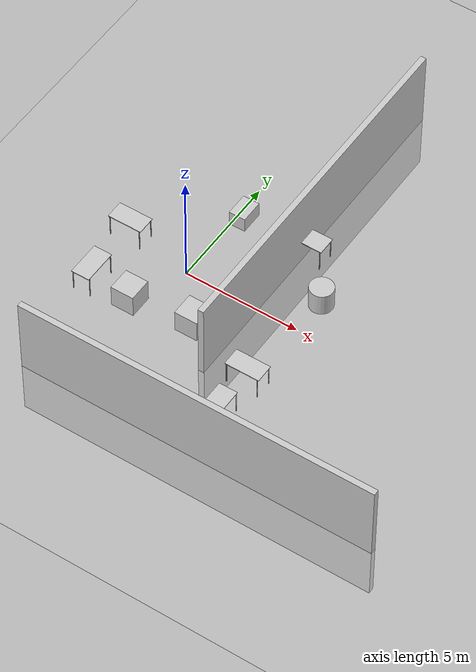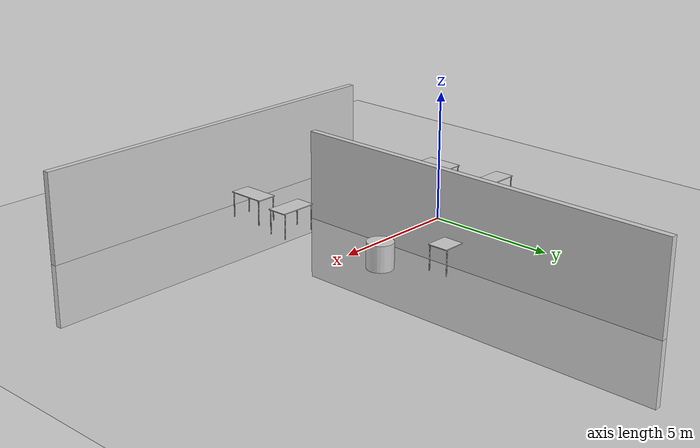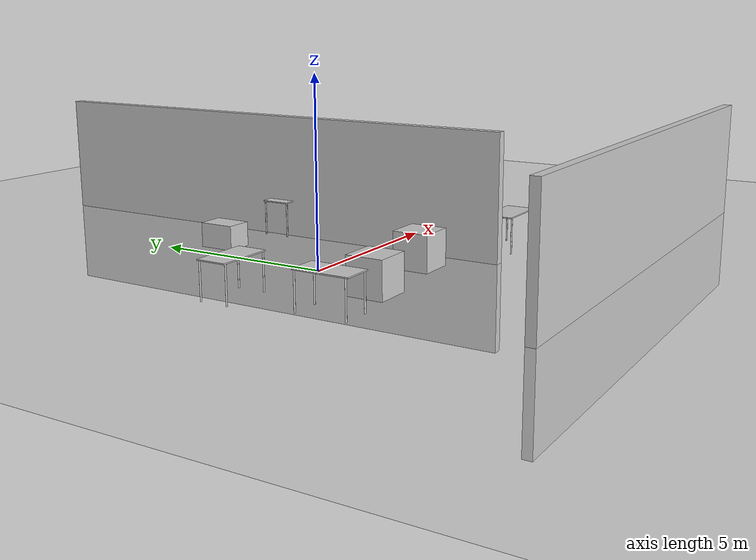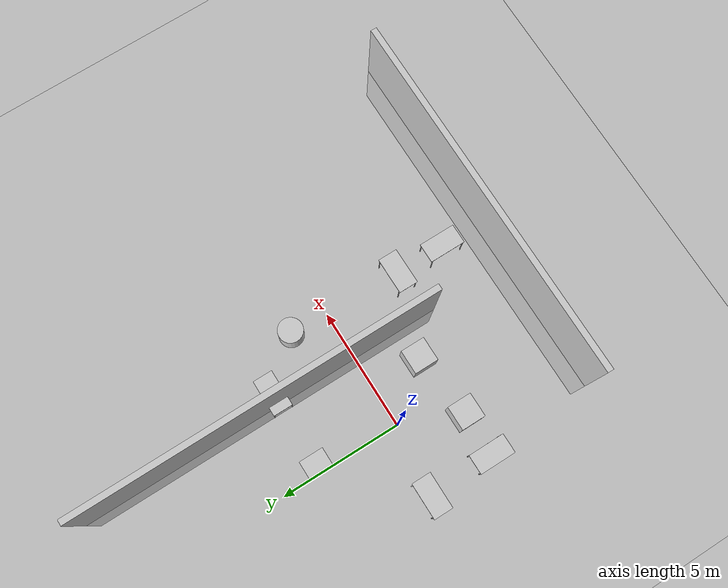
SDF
<sdf version='1.9'>
  <world name='default'>
    <light name='sun' type='directional'>
      <cast_shadows>1</cast_shadows>
      <pose>0 0 10 0 -0 0</pose>
      <diffuse>0.8 0.8 0.8 1</diffuse>
      <specular>0.2 0.2 0.2 1</specular>
      <attenuation>
        <range>1000</range>
        <constant>0.9</constant>
        <linear>0.01</linear>
        <quadratic>0.001</quadratic>
      </attenuation>
      <direction>-0.5 0.1 -0.9</direction>
      <spot>
        <inner_angle>0</inner_angle>
        <outer_angle>0</outer_angle>
        <falloff>0</falloff>
      </spot>
    </light>
    <model name='ground_plane'>
      <static>1</static>
      <link name='link'>
        <collision name='collision'>
          <geometry>
            <plane>
              <normal>0 0 1</normal>
              <size>100 100</size>
            </plane>
          </geometry>
          <surface>
            <friction>
              <ode>
                <mu>100</mu>
                <mu2>50</mu2>
              </ode>
              <torsional>
                <ode/>
              </torsional>
            </friction>
            <contact>
              <ode/>
            </contact>
            <bounce/>
          </surface>
          <max_contacts>10</max_contacts>
        </collision>
        <visual name='visual'>
          <cast_shadows>0</cast_shadows>
          <geometry>
            <plane>
              <normal>0 0 1</normal>
              <size>100 100</size>
            </plane>
          </geometry>
          <material>
            <ambient>0.8 0.8 0.8 1</ambient>
            <diffuse>0.8 0.8 0.8 1</diffuse>
            <specular>0.8 0.8 0.8 1</specular>
          </material>
        </visual>
        <self_collide>0</self_collide>
        <enable_wind>0</enable_wind>
        <kinematic>0</kinematic>
      </link>
    </model>
    <gravity>0 0 -9.8</gravity>
    <magnetic_field>6e-06 2.3e-05 -4.2e-05</magnetic_field>
    <atmosphere type='adiabatic'/>
    <physics type='ode'>
      <max_step_size>0.001</max_step_size>
      <real_time_factor>1</real_time_factor>
      <real_time_update_rate>1000</real_time_update_rate>
    </physics>
    <scene>
      <ambient>1 1 1 1</ambient>
      <background>0.8 0.8 0.8 1</background>
      <shadows>true</shadows>
    </scene>
    <model name='table'>
      <static>1</static>
      <link name='link'>
        <collision name='surface'>
          <pose>0 0 1 0 -0 0</pose>
          <geometry>
            <box>
              <size>1.5 0.8 0.03</size>
            </box>
          </geometry>
          <surface>
            <friction>
              <ode>
                <mu>0.6</mu>
                <mu2>0.6</mu2>
              </ode>
              <torsional>
                <ode/>
              </torsional>
            </friction>
            <contact>
              <ode/>
            </contact>
            <bounce/>
          </surface>
          <max_contacts>10</max_contacts>
        </collision>
        <visual name='visual1'>
          <pose>0 0 1 0 -0 0</pose>
          <geometry>
            <box>
              <size>1.5 0.8 0.03</size>
            </box>
          </geometry>
          <material>
            <ambient>0.8 0.8 0.8 1</ambient>
            <diffuse>0.8 0.8 0.8 1</diffuse>
            <specular>0.8 0.8 0.8 1</specular>
          </material>
        </visual>
        <collision name='front_left_leg'>
          <pose>0.68 0.38 0.5 0 -0 0</pose>
          <geometry>
            <cylinder>
              <radius>0.02</radius>
              <length>1</length>
            </cylinder>
          </geometry>
          <max_contacts>10</max_contacts>
          <surface>
            <contact>
              <ode/>
            </contact>
            <bounce/>
            <friction>
              <torsional>
                <ode/>
              </torsional>
              <ode/>
            </friction>
          </surface>
        </collision>
        <visual name='front_left_leg'>
          <pose>0.68 0.38 0.5 0 -0 0</pose>
          <geometry>
            <cylinder>
              <radius>0.02</radius>
              <length>1</length>
            </cylinder>
          </geometry>
          <material>
            <ambient>0.8 0.8 0.8 1</ambient>
            <diffuse>0.8 0.8 0.8 1</diffuse>
            <specular>0.8 0.8 0.8 1</specular>
          </material>
        </visual>
        <collision name='front_right_leg'>
          <pose>0.68 -0.38 0.5 0 -0 0</pose>
          <geometry>
            <cylinder>
              <radius>0.02</radius>
              <length>1</length>
            </cylinder>
          </geometry>
          <max_contacts>10</max_contacts>
          <surface>
            <contact>
              <ode/>
            </contact>
            <bounce/>
            <friction>
              <torsional>
                <ode/>
              </torsional>
              <ode/>
            </friction>
          </surface>
        </collision>
        <visual name='front_right_leg'>
          <pose>0.68 -0.38 0.5 0 -0 0</pose>
          <geometry>
            <cylinder>
              <radius>0.02</radius>
              <length>1</length>
            </cylinder>
          </geometry>
          <material>
            <ambient>0.8 0.8 0.8 1</ambient>
            <diffuse>0.8 0.8 0.8 1</diffuse>
            <specular>0.8 0.8 0.8 1</specular>
          </material>
        </visual>
        <collision name='back_right_leg'>
          <pose>-0.68 -0.38 0.5 0 -0 0</pose>
          <geometry>
            <cylinder>
              <radius>0.02</radius>
              <length>1</length>
            </cylinder>
          </geometry>
          <max_contacts>10</max_contacts>
          <surface>
            <contact>
              <ode/>
            </contact>
            <bounce/>
            <friction>
              <torsional>
                <ode/>
              </torsional>
              <ode/>
            </friction>
          </surface>
        </collision>
        <visual name='back_right_leg'>
          <pose>-0.68 -0.38 0.5 0 -0 0</pose>
          <geometry>
            <cylinder>
              <radius>0.02</radius>
              <length>1</length>
            </cylinder>
          </geometry>
          <material>
            <ambient>0.8 0.8 0.8 1</ambient>
            <diffuse>0.8 0.8 0.8 1</diffuse>
            <specular>0.8 0.8 0.8 1</specular>
          </material>
        </visual>
        <collision name='back_left_leg'>
          <pose>-0.68 0.38 0.5 0 -0 0</pose>
          <geometry>
            <cylinder>
              <radius>0.02</radius>
              <length>1</length>
            </cylinder>
          </geometry>
          <max_contacts>10</max_contacts>
          <surface>
            <contact>
              <ode/>
            </contact>
            <bounce/>
            <friction>
              <torsional>
                <ode/>
              </torsional>
              <ode/>
            </friction>
          </surface>
        </collision>
        <visual name='back_left_leg'>
          <pose>-0.68 0.38 0.5 0 -0 0</pose>
          <geometry>
            <cylinder>
              <radius>0.02</radius>
              <length>1</length>
            </cylinder>
          </geometry>
          <material>
            <ambient>0.8 0.8 0.8 1</ambient>
            <diffuse>0.8 0.8 0.8 1</diffuse>
            <specular>0.8 0.8 0.8 1</specular>
          </material>
        </visual>
        <self_collide>0</self_collide>
        <enable_wind>0</enable_wind>
        <kinematic>0</kinematic>
      </link>
      <pose>-2.8593 0.407332 0 0 -0 0</pose>
    </model>
    <model name='table_clone'>
      <static>1</static>
      <link name='link'>
        <collision name='surface'>
          <pose>0 0 1 0 -0 0</pose>
          <geometry>
            <box>
              <size>1.5 0.8 0.03</size>
            </box>
          </geometry>
          <surface>
            <friction>
              <ode>
                <mu>0.6</mu>
                <mu2>0.6</mu2>
              </ode>
              <torsional>
                <ode/>
              </torsional>
            </friction>
            <contact>
              <ode/>
            </contact>
            <bounce/>
          </surface>
          <max_contacts>10</max_contacts>
        </collision>
        <visual name='visual1'>
          <pose>0 0 1 0 -0 0</pose>
          <geometry>
            <box>
              <size>1.5 0.8 0.03</size>
            </box>
          </geometry>
          <material>
            <ambient>0.8 0.8 0.8 1</ambient>
            <diffuse>0.8 0.8 0.8 1</diffuse>
            <specular>0.8 0.8 0.8 1</specular>
          </material>
        </visual>
        <collision name='front_left_leg'>
          <pose>0.68 0.38 0.5 0 -0 0</pose>
          <geometry>
            <cylinder>
              <radius>0.02</radius>
              <length>1</length>
            </cylinder>
          </geometry>
          <max_contacts>10</max_contacts>
          <surface>
            <contact>
              <ode/>
            </contact>
            <bounce/>
            <friction>
              <torsional>
                <ode/>
              </torsional>
              <ode/>
            </friction>
          </surface>
        </collision>
        <visual name='front_left_leg'>
          <pose>0.68 0.38 0.5 0 -0 0</pose>
          <geometry>
            <cylinder>
              <radius>0.02</radius>
              <length>1</length>
            </cylinder>
          </geometry>
          <material>
            <ambient>0.8 0.8 0.8 1</ambient>
            <diffuse>0.8 0.8 0.8 1</diffuse>
            <specular>0.8 0.8 0.8 1</specular>
          </material>
        </visual>
        <collision name='front_right_leg'>
          <pose>0.68 -0.38 0.5 0 -0 0</pose>
          <geometry>
            <cylinder>
              <radius>0.02</radius>
              <length>1</length>
            </cylinder>
          </geometry>
          <max_contacts>10</max_contacts>
          <surface>
            <contact>
              <ode/>
            </contact>
            <bounce/>
            <friction>
              <torsional>
                <ode/>
              </torsional>
              <ode/>
            </friction>
          </surface>
        </collision>
        <visual name='front_right_leg'>
          <pose>0.68 -0.38 0.5 0 -0 0</pose>
          <geometry>
            <cylinder>
              <radius>0.02</radius>
              <length>1</length>
            </cylinder>
          </geometry>
          <material>
            <ambient>0.8 0.8 0.8 1</ambient>
            <diffuse>0.8 0.8 0.8 1</diffuse>
            <specular>0.8 0.8 0.8 1</specular>
          </material>
        </visual>
        <collision name='back_right_leg'>
          <pose>-0.68 -0.38 0.5 0 -0 0</pose>
          <geometry>
            <cylinder>
              <radius>0.02</radius>
              <length>1</length>
            </cylinder>
          </geometry>
          <max_contacts>10</max_contacts>
          <surface>
            <contact>
              <ode/>
            </contact>
            <bounce/>
            <friction>
              <torsional>
                <ode/>
              </torsional>
              <ode/>
            </friction>
          </surface>
        </collision>
        <visual name='back_right_leg'>
          <pose>-0.68 -0.38 0.5 0 -0 0</pose>
          <geometry>
            <cylinder>
              <radius>0.02</radius>
              <length>1</length>
            </cylinder>
          </geometry>
          <material>
            <ambient>0.8 0.8 0.8 1</ambient>
            <diffuse>0.8 0.8 0.8 1</diffuse>
            <specular>0.8 0.8 0.8 1</specular>
          </material>
        </visual>
        <collision name='back_left_leg'>
          <pose>-0.68 0.38 0.5 0 -0 0</pose>
          <geometry>
            <cylinder>
              <radius>0.02</radius>
              <length>1</length>
            </cylinder>
          </geometry>
          <max_contacts>10</max_contacts>
          <surface>
            <contact>
              <ode/>
            </contact>
            <bounce/>
            <friction>
              <torsional>
                <ode/>
              </torsional>
              <ode/>
            </friction>
          </surface>
        </collision>
        <visual name='back_left_leg'>
          <pose>-0.68 0.38 0.5 0 -0 0</pose>
          <geometry>
            <cylinder>
              <radius>0.02</radius>
              <length>1</length>
            </cylinder>
          </geometry>
          <material>
            <ambient>0.8 0.8 0.8 1</ambient>
            <diffuse>0.8 0.8 0.8 1</diffuse>
            <specular>0.8 0.8 0.8 1</specular>
          </material>
        </visual>
        <self_collide>0</self_collide>
        <enable_wind>0</enable_wind>
        <kinematic>0</kinematic>
      </link>
      <pose>-2.76778 -2.25945 0 0 -0 1.5708</pose>
    </model>
    <model name='unit_box'>
      <pose>1.67802 -2.00808 0.5 0 -0 0</pose>
      <link name='link'>
        <inertial>
          <mass>1</mass>
          <inertia>
            <ixx>0.166667</ixx>
            <ixy>0</ixy>
            <ixz>0</ixz>
            <iyy>0.166667</iyy>
            <iyz>0</iyz>
            <izz>0.166667</izz>
          </inertia>
          <pose>0 0 0 0 -0 0</pose>
        </inertial>
        <collision name='collision'>
          <geometry>
            <box>
              <size>1 1 1</size>
            </box>
          </geometry>
          <max_contacts>10</max_contacts>
          <surface>
            <contact>
              <ode/>
            </contact>
            <bounce/>
            <friction>
              <torsional>
                <ode/>
              </torsional>
              <ode/>
            </friction>
          </surface>
        </collision>
        <visual name='visual'>
          <geometry>
            <box>
              <size>1 1 1</size>
            </box>
          </geometry>
          <material>
            <ambient>0.8 0.8 0.8 1</ambient>
            <diffuse>0.8 0.8 0.8 1</diffuse>
            <specular>0.8 0.8 0.8 1</specular>
          </material>
        </visual>
        <self_collide>0</self_collide>
        <enable_wind>0</enable_wind>
        <kinematic>0</kinematic>
      </link>
    </model>
    <model name='unit_box_0'>
      <pose>-0.987992 -2.32894 0.5 0 -0 0</pose>
      <link name='link'>
        <inertial>
          <mass>1</mass>
          <inertia>
            <ixx>0.166667</ixx>
            <ixy>0</ixy>
            <ixz>0</ixz>
            <iyy>0.166667</iyy>
            <iyz>0</iyz>
            <izz>0.166667</izz>
          </inertia>
          <pose>0 0 0 0 -0 0</pose>
        </inertial>
        <collision name='collision'>
          <geometry>
            <box>
              <size>1 1.00001 1</size>
            </box>
          </geometry>
          <max_contacts>10</max_contacts>
          <surface>
            <contact>
              <ode/>
            </contact>
            <bounce/>
            <friction>
              <torsional>
                <ode/>
              </torsional>
              <ode/>
            </friction>
          </surface>
        </collision>
        <visual name='visual'>
          <geometry>
            <box>
              <size>1 1.00001 1</size>
            </box>
          </geometry>
          <material>
            <ambient>0.8 0.8 0.8 1</ambient>
            <diffuse>0.8 0.8 0.8 1</diffuse>
            <specular>0.8 0.8 0.8 1</specular>
          </material>
        </visual>
        <self_collide>0</self_collide>
        <enable_wind>0</enable_wind>
        <kinematic>0</kinematic>
      </link>
    </model>
    <model name='unit_box_0_clone'>
      <pose>3.11249 4.05805 0.5 0 -0 0</pose>
      <link name='link'>
        <inertial>
          <mass>1</mass>
          <inertia>
            <ixx>0.166667</ixx>
            <ixy>0</ixy>
            <ixz>0</ixz>
            <iyy>0.166667</iyy>
            <iyz>0</iyz>
            <izz>0.166667</izz>
          </inertia>
          <pose>0 0 0 0 -0 0</pose>
        </inertial>
        <collision name='collision'>
          <geometry>
            <box>
              <size>0.251662 15.3227 5.91896</size>
            </box>
          </geometry>
          <max_contacts>10</max_contacts>
          <surface>
            <contact>
              <ode/>
            </contact>
            <bounce/>
            <friction>
              <torsional>
                <ode/>
              </torsional>
              <ode/>
            </friction>
          </surface>
        </collision>
        <visual name='visual'>
          <geometry>
            <box>
              <size>0.251662 15.3227 5.91896</size>
            </box>
          </geometry>
          <material>
            <ambient>0.8 0.8 0.8 1</ambient>
            <diffuse>0.8 0.8 0.8 1</diffuse>
            <specular>0.8 0.8 0.8 1</specular>
          </material>
        </visual>
        <self_collide>0</self_collide>
        <enable_wind>0</enable_wind>
        <kinematic>0</kinematic>
      </link>
    </model>
    <model name='unit_box_0_clone_clone'>
      <pose>5.10863 -6.95697 0.5 0 0 -1.5708</pose>
      <link name='link'>
        <inertial>
          <mass>1</mass>
          <inertia>
            <ixx>0.166667</ixx>
            <ixy>0</ixy>
            <ixz>0</ixz>
            <iyy>0.166667</iyy>
            <iyz>0</iyz>
            <izz>0.166667</izz>
          </inertia>
          <pose>0 0 0 0 -0 0</pose>
        </inertial>
        <collision name='collision'>
          <geometry>
            <box>
              <size>0.251662 15.3227 5.91896</size>
            </box>
          </geometry>
          <max_contacts>10</max_contacts>
          <surface>
            <contact>
              <ode/>
            </contact>
            <bounce/>
            <friction>
              <torsional>
                <ode/>
              </torsional>
              <ode/>
            </friction>
          </surface>
        </collision>
        <visual name='visual'>
          <geometry>
            <box>
              <size>0.251662 15.3227 5.91896</size>
            </box>
          </geometry>
          <material>
            <ambient>0.8 0.8 0.8 1</ambient>
            <diffuse>0.8 0.8 0.8 1</diffuse>
            <specular>0.8 0.8 0.8 1</specular>
          </material>
        </visual>
        <self_collide>0</self_collide>
        <enable_wind>0</enable_wind>
        <kinematic>0</kinematic>
      </link>
    </model>
    <model name='unit_box_clone'>
      <pose>0.381231 3.35459 0.5 0 -0 0</pose>
      <link name='link'>
        <inertial>
          <mass>1</mass>
          <inertia>
            <ixx>0.166667</ixx>
            <ixy>0</ixy>
            <ixz>0</ixz>
            <iyy>0.166667</iyy>
            <iyz>0</iyz>
            <izz>0.166667</izz>
          </inertia>
          <pose>0 0 0 0 -0 0</pose>
        </inertial>
        <collision name='collision'>
          <geometry>
            <box>
              <size>0.713247 1 0.665449</size>
            </box>
          </geometry>
          <max_contacts>10</max_contacts>
          <surface>
            <contact>
              <ode/>
            </contact>
            <bounce/>
            <friction>
              <torsional>
                <ode/>
              </torsional>
              <ode/>
            </friction>
          </surface>
        </collision>
        <visual name='visual'>
          <geometry>
            <box>
              <size>0.713247 1 0.665449</size>
            </box>
          </geometry>
          <material>
            <ambient>0.8 0.8 0.8 1</ambient>
            <diffuse>0.8 0.8 0.8 1</diffuse>
            <specular>0.8 0.8 0.8 1</specular>
          </material>
        </visual>
        <self_collide>0</self_collide>
        <enable_wind>0</enable_wind>
        <kinematic>0</kinematic>
      </link>
    </model>
    <model name='table_clone_clone'>
      <static>1</static>
      <link name='link'>
        <collision name='surface'>
          <pose>0 0 1 0 -0 0</pose>
          <geometry>
            <box>
              <size>1.5 0.8 0.03</size>
            </box>
          </geometry>
          <surface>
            <friction>
              <ode>
                <mu>0.6</mu>
                <mu2>0.6</mu2>
              </ode>
              <torsional>
                <ode/>
              </torsional>
            </friction>
            <contact>
              <ode/>
            </contact>
            <bounce/>
          </surface>
          <max_contacts>10</max_contacts>
        </collision>
        <visual name='visual1'>
          <pose>0 0 1 0 -0 0</pose>
          <geometry>
            <box>
              <size>1.5 0.8 0.03</size>
            </box>
          </geometry>
          <material>
            <ambient>0.8 0.8 0.8 1</ambient>
            <diffuse>0.8 0.8 0.8 1</diffuse>
            <specular>0.8 0.8 0.8 1</specular>
          </material>
        </visual>
        <collision name='front_left_leg'>
          <pose>0.68 0.38 0.5 0 -0 0</pose>
          <geometry>
            <cylinder>
              <radius>0.02</radius>
              <length>1</length>
            </cylinder>
          </geometry>
          <max_contacts>10</max_contacts>
          <surface>
            <contact>
              <ode/>
            </contact>
            <bounce/>
            <friction>
              <torsional>
                <ode/>
              </torsional>
              <ode/>
            </friction>
          </surface>
        </collision>
        <visual name='front_left_leg'>
          <pose>0.68 0.38 0.5 0 -0 0</pose>
          <geometry>
            <cylinder>
              <radius>0.02</radius>
              <length>1</length>
            </cylinder>
          </geometry>
          <material>
            <ambient>0.8 0.8 0.8 1</ambient>
            <diffuse>0.8 0.8 0.8 1</diffuse>
            <specular>0.8 0.8 0.8 1</specular>
          </material>
        </visual>
        <collision name='front_right_leg'>
          <pose>0.68 -0.38 0.5 0 -0 0</pose>
          <geometry>
            <cylinder>
              <radius>0.02</radius>
              <length>1</length>
            </cylinder>
          </geometry>
          <max_contacts>10</max_contacts>
          <surface>
            <contact>
              <ode/>
            </contact>
            <bounce/>
            <friction>
              <torsional>
                <ode/>
              </torsional>
              <ode/>
            </friction>
          </surface>
        </collision>
        <visual name='front_right_leg'>
          <pose>0.68 -0.38 0.5 0 -0 0</pose>
          <geometry>
            <cylinder>
              <radius>0.02</radius>
              <length>1</length>
            </cylinder>
          </geometry>
          <material>
            <ambient>0.8 0.8 0.8 1</ambient>
            <diffuse>0.8 0.8 0.8 1</diffuse>
            <specular>0.8 0.8 0.8 1</specular>
          </material>
        </visual>
        <collision name='back_right_leg'>
          <pose>-0.68 -0.38 0.5 0 -0 0</pose>
          <geometry>
            <cylinder>
              <radius>0.02</radius>
              <length>1</length>
            </cylinder>
          </geometry>
          <max_contacts>10</max_contacts>
          <surface>
            <contact>
              <ode/>
            </contact>
            <bounce/>
            <friction>
              <torsional>
                <ode/>
              </torsional>
              <ode/>
            </friction>
          </surface>
        </collision>
        <visual name='back_right_leg'>
          <pose>-0.68 -0.38 0.5 0 -0 0</pose>
          <geometry>
            <cylinder>
              <radius>0.02</radius>
              <length>1</length>
            </cylinder>
          </geometry>
          <material>
            <ambient>0.8 0.8 0.8 1</ambient>
            <diffuse>0.8 0.8 0.8 1</diffuse>
            <specular>0.8 0.8 0.8 1</specular>
          </material>
        </visual>
        <collision name='back_left_leg'>
          <pose>-0.68 0.38 0.5 0 -0 0</pose>
          <geometry>
            <cylinder>
              <radius>0.02</radius>
              <length>1</length>
            </cylinder>
          </geometry>
          <max_contacts>10</max_contacts>
          <surface>
            <contact>
              <ode/>
            </contact>
            <bounce/>
            <friction>
              <torsional>
                <ode/>
              </torsional>
              <ode/>
            </friction>
          </surface>
        </collision>
        <visual name='back_left_leg'>
          <pose>-0.68 0.38 0.5 0 -0 0</pose>
          <geometry>
            <cylinder>
              <radius>0.02</radius>
              <length>1</length>
            </cylinder>
          </geometry>
          <material>
            <ambient>0.8 0.8 0.8 1</ambient>
            <diffuse>0.8 0.8 0.8 1</diffuse>
            <specular>0.8 0.8 0.8 1</specular>
          </material>
        </visual>
        <self_collide>0</self_collide>
        <enable_wind>0</enable_wind>
        <kinematic>0</kinematic>
      </link>
      <pose>4.82993 -3.08632 0 0 -0 0</pose>
    </model>
    <model name='table_clone_clone_clone'>
      <static>1</static>
      <link name='link'>
        <collision name='surface'>
          <pose>0 0 1 0 -0 0</pose>
          <geometry>
            <box>
              <size>1.5 0.8 0.03</size>
            </box>
          </geometry>
          <surface>
            <friction>
              <ode>
                <mu>0.6</mu>
                <mu2>0.6</mu2>
              </ode>
              <torsional>
                <ode/>
              </torsional>
            </friction>
            <contact>
              <ode/>
            </contact>
            <bounce/>
          </surface>
          <max_contacts>10</max_contacts>
        </collision>
        <visual name='visual1'>
          <pose>0 0 1 0 -0 0</pose>
          <geometry>
            <box>
              <size>1.5 0.8 0.03</size>
            </box>
          </geometry>
          <material>
            <ambient>0.8 0.8 0.8 1</ambient>
            <diffuse>0.8 0.8 0.8 1</diffuse>
            <specular>0.8 0.8 0.8 1</specular>
          </material>
        </visual>
        <collision name='front_left_leg'>
          <pose>0.68 0.38 0.5 0 -0 0</pose>
          <geometry>
            <cylinder>
              <radius>0.02</radius>
              <length>1</length>
            </cylinder>
          </geometry>
          <max_contacts>10</max_contacts>
          <surface>
            <contact>
              <ode/>
            </contact>
            <bounce/>
            <friction>
              <torsional>
                <ode/>
              </torsional>
              <ode/>
            </friction>
          </surface>
        </collision>
        <visual name='front_left_leg'>
          <pose>0.68 0.38 0.5 0 -0 0</pose>
          <geometry>
            <cylinder>
              <radius>0.02</radius>
              <length>1</length>
            </cylinder>
          </geometry>
          <material>
            <ambient>0.8 0.8 0.8 1</ambient>
            <diffuse>0.8 0.8 0.8 1</diffuse>
            <specular>0.8 0.8 0.8 1</specular>
          </material>
        </visual>
        <collision name='front_right_leg'>
          <pose>0.68 -0.38 0.5 0 -0 0</pose>
          <geometry>
            <cylinder>
              <radius>0.02</radius>
              <length>1</length>
            </cylinder>
          </geometry>
          <max_contacts>10</max_contacts>
          <surface>
            <contact>
              <ode/>
            </contact>
            <bounce/>
            <friction>
              <torsional>
                <ode/>
              </torsional>
              <ode/>
            </friction>
          </surface>
        </collision>
        <visual name='front_right_leg'>
          <pose>0.68 -0.38 0.5 0 -0 0</pose>
          <geometry>
            <cylinder>
              <radius>0.02</radius>
              <length>1</length>
            </cylinder>
          </geometry>
          <material>
            <ambient>0.8 0.8 0.8 1</ambient>
            <diffuse>0.8 0.8 0.8 1</diffuse>
            <specular>0.8 0.8 0.8 1</specular>
          </material>
        </visual>
        <collision name='back_right_leg'>
          <pose>-0.68 -0.38 0.5 0 -0 0</pose>
          <geometry>
            <cylinder>
              <radius>0.02</radius>
              <length>1</length>
            </cylinder>
          </geometry>
          <max_contacts>10</max_contacts>
          <surface>
            <contact>
              <ode/>
            </contact>
            <bounce/>
            <friction>
              <torsional>
                <ode/>
              </torsional>
              <ode/>
            </friction>
          </surface>
        </collision>
        <visual name='back_right_leg'>
          <pose>-0.68 -0.38 0.5 0 -0 0</pose>
          <geometry>
            <cylinder>
              <radius>0.02</radius>
              <length>1</length>
            </cylinder>
          </geometry>
          <material>
            <ambient>0.8 0.8 0.8 1</ambient>
            <diffuse>0.8 0.8 0.8 1</diffuse>
            <specular>0.8 0.8 0.8 1</specular>
          </material>
        </visual>
        <collision name='back_left_leg'>
          <pose>-0.68 0.38 0.5 0 -0 0</pose>
          <geometry>
            <cylinder>
              <radius>0.02</radius>
              <length>1</length>
            </cylinder>
          </geometry>
          <max_contacts>10</max_contacts>
          <surface>
            <contact>
              <ode/>
            </contact>
            <bounce/>
            <friction>
              <torsional>
                <ode/>
              </torsional>
              <ode/>
            </friction>
          </surface>
        </collision>
        <visual name='back_left_leg'>
          <pose>-0.68 0.38 0.5 0 -0 0</pose>
          <geometry>
            <cylinder>
              <radius>0.02</radius>
              <length>1</length>
            </cylinder>
          </geometry>
          <material>
            <ambient>0.8 0.8 0.8 1</ambient>
            <diffuse>0.8 0.8 0.8 1</diffuse>
            <specular>0.8 0.8 0.8 1</specular>
          </material>
        </visual>
        <self_collide>0</self_collide>
        <enable_wind>0</enable_wind>
        <kinematic>0</kinematic>
      </link>
      <pose>4.84312 -5.11117 0 0 -0 1.5708</pose>
    </model>
    <model name='unit_cylinder'>
      <pose>5.05544 1.57361 0.5 0 -0 0</pose>
      <link name='link'>
        <inertial>
          <mass>1</mass>
          <inertia>
            <ixx>0.145833</ixx>
            <ixy>0</ixy>
            <ixz>0</ixz>
            <iyy>0.145833</iyy>
            <iyz>0</iyz>
            <izz>0.125</izz>
          </inertia>
          <pose>0 0 0 0 -0 0</pose>
        </inertial>
        <collision name='collision'>
          <geometry>
            <cylinder>
              <radius>0.5</radius>
              <length>1</length>
            </cylinder>
          </geometry>
          <max_contacts>10</max_contacts>
          <surface>
            <contact>
              <ode/>
            </contact>
            <bounce/>
            <friction>
              <torsional>
                <ode/>
              </torsional>
              <ode/>
            </friction>
          </surface>
        </collision>
        <visual name='visual'>
          <geometry>
            <cylinder>
              <radius>0.5</radius>
              <length>1</length>
            </cylinder>
          </geometry>
          <material>
            <ambient>0.8 0.8 0.8 1</ambient>
            <diffuse>0.8 0.8 0.8 1</diffuse>
            <specular>0.8 0.8 0.8 1</specular>
          </material>
        </visual>
        <self_collide>0</self_collide>
        <enable_wind>0</enable_wind>
        <kinematic>0</kinematic>
      </link>
    </model>
    <model name='table_clone_clone_0'>
      <static>1</static>
      <link name='link'>
        <collision name='surface'>
          <pose>0 0 1 0 -0 0</pose>
          <geometry>
            <box>
              <size>1.5 0.8 0.03</size>
            </box>
          </geometry>
          <surface>
            <friction>
              <ode>
                <mu>0.6</mu>
                <mu2>0.6</mu2>
              </ode>
              <torsional>
                <ode/>
              </torsional>
            </friction>
            <contact>
              <ode/>
            </contact>
            <bounce/>
          </surface>
          <max_contacts>10</max_contacts>
        </collision>
        <visual name='visual1'>
          <pose>0 0 1 0 -0 0</pose>
          <geometry>
            <box>
              <size>1.5 0.8 0.03</size>
            </box>
          </geometry>
          <material>
            <ambient>0.8 0.8 0.8 1</ambient>
            <diffuse>0.8 0.8 0.8 1</diffuse>
            <specular>0.8 0.8 0.8 1</specular>
          </material>
        </visual>
        <collision name='front_left_leg'>
          <pose>0.68 0.38 0.5 0 -0 0</pose>
          <geometry>
            <cylinder>
              <radius>0.02</radius>
              <length>1</length>
            </cylinder>
          </geometry>
          <max_contacts>10</max_contacts>
          <surface>
            <contact>
              <ode/>
            </contact>
            <bounce/>
            <friction>
              <torsional>
                <ode/>
              </torsional>
              <ode/>
            </friction>
          </surface>
        </collision>
        <visual name='front_left_leg'>
          <pose>0.68 0.38 0.5 0 -0 0</pose>
          <geometry>
            <cylinder>
              <radius>0.02</radius>
              <length>1</length>
            </cylinder>
          </geometry>
          <material>
            <ambient>0.8 0.8 0.8 1</ambient>
            <diffuse>0.8 0.8 0.8 1</diffuse>
            <specular>0.8 0.8 0.8 1</specular>
          </material>
        </visual>
        <collision name='front_right_leg'>
          <pose>0.68 -0.38 0.5 0 -0 0</pose>
          <geometry>
            <cylinder>
              <radius>0.02</radius>
              <length>1</length>
            </cylinder>
          </geometry>
          <max_contacts>10</max_contacts>
          <surface>
            <contact>
              <ode/>
            </contact>
            <bounce/>
            <friction>
              <torsional>
                <ode/>
              </torsional>
              <ode/>
            </friction>
          </surface>
        </collision>
        <visual name='front_right_leg'>
          <pose>0.68 -0.38 0.5 0 -0 0</pose>
          <geometry>
            <cylinder>
              <radius>0.02</radius>
              <length>1</length>
            </cylinder>
          </geometry>
          <material>
            <ambient>0.8 0.8 0.8 1</ambient>
            <diffuse>0.8 0.8 0.8 1</diffuse>
            <specular>0.8 0.8 0.8 1</specular>
          </material>
        </visual>
        <collision name='back_right_leg'>
          <pose>-0.68 -0.38 0.5 0 -0 0</pose>
          <geometry>
            <cylinder>
              <radius>0.02</radius>
              <length>1</length>
            </cylinder>
          </geometry>
          <max_contacts>10</max_contacts>
          <surface>
            <contact>
              <ode/>
            </contact>
            <bounce/>
            <friction>
              <torsional>
                <ode/>
              </torsional>
              <ode/>
            </friction>
          </surface>
        </collision>
        <visual name='back_right_leg'>
          <pose>-0.68 -0.38 0.5 0 -0 0</pose>
          <geometry>
            <cylinder>
              <radius>0.02</radius>
              <length>1</length>
            </cylinder>
          </geometry>
          <material>
            <ambient>0.8 0.8 0.8 1</ambient>
            <diffuse>0.8 0.8 0.8 1</diffuse>
            <specular>0.8 0.8 0.8 1</specular>
          </material>
        </visual>
        <collision name='back_left_leg'>
          <pose>-0.68 0.38 0.5 0 -0 0</pose>
          <geometry>
            <cylinder>
              <radius>0.02</radius>
              <length>1</length>
            </cylinder>
          </geometry>
          <max_contacts>10</max_contacts>
          <surface>
            <contact>
              <ode/>
            </contact>
            <bounce/>
            <friction>
              <torsional>
                <ode/>
              </torsional>
              <ode/>
            </friction>
          </surface>
        </collision>
        <visual name='back_left_leg'>
          <pose>-0.68 0.38 0.5 0 -0 0</pose>
          <geometry>
            <cylinder>
              <radius>0.02</radius>
              <length>1</length>
            </cylinder>
          </geometry>
          <material>
            <ambient>0.8 0.8 0.8 1</ambient>
            <diffuse>0.8 0.8 0.8 1</diffuse>
            <specular>0.8 0.8 0.8 1</specular>
          </material>
        </visual>
        <self_collide>0</self_collide>
        <enable_wind>0</enable_wind>
        <kinematic>0</kinematic>
      </link>
      <pose>3.37966 3.36311 0 0 -0 0</pose>
    </model>
    <gui fullscreen='0'>
      <camera name='user_camera'>
        <pose>9.04491 1.84618 16.4829 0 1.23564 -3.13897</pose>
        <view_controller>orbit</view_controller>
        <projection_type>perspective</projection_type>
      </camera>
    </gui>
  </world>
</sdf>
